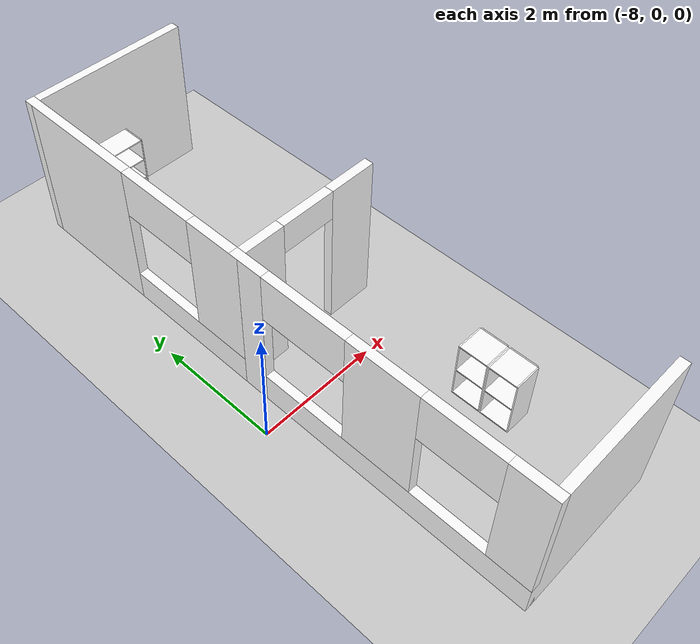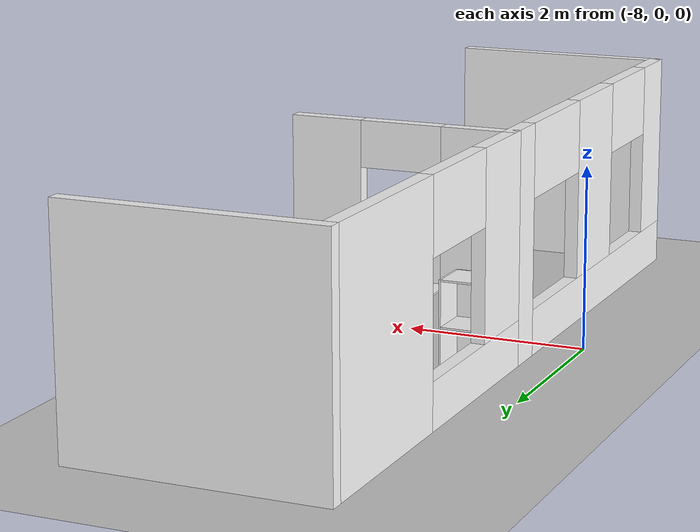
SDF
<sdf version="1.8">
 <world name="bot4House">
  <model name="ground_plane">
   <static>1</static>
   <link name="link">
    <collision name="collision">
     <geometry><plane><normal>0 0 1</normal><size>100 100</size></plane></geometry>
    </collision>
    <visual name="visual"><geometry><plane><normal>0 0 1</normal><size>100 100</size></plane></geometry></visual>
   </link>
  </model>
  <model name="house">
   <link name="Wall_84">
    <pose>-6.2 5.275 0 0 -0 3.14159</pose>
    <visual name="Wall_84_Visual">
     <pose>0 0 1.25 0 -0 0</pose>
     <geometry><box><size>2.75 0.15 2.5</size></box></geometry>
     <material>
      <ambient>1 1 1 1</ambient>
      <diffuse>1 1 1 1</diffuse>
      <specular>0.2 0.2 0.2 1</specular>
      <emissive>0 0 0 1</emissive>
     </material>
    </visual>
    <collision name="Wall_84_Collision">
     <pose>0 0 1.25 0 -0 0</pose>
     <geometry><box><size>2.75 0.15 2.5</size></box></geometry>
     <surface>
      <friction>
       <ode><mu>1</mu><mu2>1</mu2><fdir1>0 0 0</fdir1><slip1>0</slip1><slip2>0</slip2></ode>
       <torsional>
        <coefficient>1</coefficient>
        <patch_radius>0</patch_radius>
        <surface_radius>0</surface_radius>
        <use_patch_radius>1</use_patch_radius>
        <ode><slip>0</slip></ode>
       </torsional>
      </friction>
      <bounce><restitution_coefficient>0</restitution_coefficient><threshold>1e+06</threshold></bounce>
      <contact>
       <collide_without_contact>0</collide_without_contact>
       <collide_without_contact_bitmask>1</collide_without_contact_bitmask>
       <collide_bitmask>1</collide_bitmask>
       <ode>
        <soft_cfm>0</soft_cfm>
        <soft_erp>0.2</soft_erp>
        <kp>1e+13</kp>
        <kd>1</kd>
        <max_vel>0.01</max_vel>
        <min_depth>0</min_depth>
       </ode>
       <bullet>
        <split_impulse>1</split_impulse>
        <split_impulse_penetration_threshold>-0.01</split_impulse_penetration_threshold>
        <soft_cfm>0</soft_cfm>
        <soft_erp>0.2</soft_erp>
        <kp>1e+13</kp>
        <kd>1</kd>
       </bullet>
      </contact>
     </surface>
    </collision>
   </link>
   <link name="Wall_85">
    <pose>-7.5 3.1 0 0 0 -1.5708</pose>
    <visual name="Wall_85_Visual_3">
     <pose>0.62212 0 2.1 0 -0 0</pose>
     <geometry><box><size>1.332 0.15 0.8</size></box></geometry>
     <material>
      <ambient>1 1 1 1</ambient>
      <diffuse>1 1 1 1</diffuse>
      <specular>0.2 0.2 0.2 1</specular>
      <emissive>0 0 0 1</emissive>
     </material>
    </visual>
    <visual name="Wall_85_Visual_2">
     <pose>1.76906 0 1.5 0 -0 0</pose>
     <geometry><box><size>0.96188 0.15 2</size></box></geometry>
     <material>
      <ambient>1 1 1 1</ambient>
      <diffuse>1 1 1 1</diffuse>
      <specular>0.2 0.2 0.2 1</specular>
      <emissive>0 0 0 1</emissive>
     </material>
    </visual>
    <visual name="Wall_85_Visual_0">
     <pose>-1.14694 0 1.25 0 -0 0</pose>
     <geometry><box><size>2.20612 0.15 2.5</size></box></geometry>
     <material>
      <ambient>1 1 1 1</ambient>
      <diffuse>1 1 1 1</diffuse>
      <specular>0.2 0.2 0.2 1</specular>
      <emissive>0 0 0 1</emissive>
     </material>
    </visual>
    <visual name="Wall_85_Visual_1">
     <pose>1.10306 0 0.25 0 -0 0</pose>
     <geometry><box><size>2.29388 0.15 0.5</size></box></geometry>
     <material>
      <ambient>1 1 1 1</ambient>
      <diffuse>1 1 1 1</diffuse>
      <specular>0.2 0.2 0.2 1</specular>
      <emissive>0 0 0 1</emissive>
     </material>
    </visual>
    <collision name="Wall_85_Collision_3">
     <pose>0.62212 0 2.1 0 -0 0</pose>
     <geometry><box><size>1.332 0.15 0.8</size></box></geometry>
     <surface>
      <friction>
       <ode><mu>1</mu><mu2>1</mu2><fdir1>0 0 0</fdir1><slip1>0</slip1><slip2>0</slip2></ode>
       <torsional>
        <coefficient>1</coefficient>
        <patch_radius>0</patch_radius>
        <surface_radius>0</surface_radius>
        <use_patch_radius>1</use_patch_radius>
        <ode><slip>0</slip></ode>
       </torsional>
      </friction>
      <bounce><restitution_coefficient>0</restitution_coefficient><threshold>1e+06</threshold></bounce>
      <contact>
       <collide_without_contact>0</collide_without_contact>
       <collide_without_contact_bitmask>1</collide_without_contact_bitmask>
       <collide_bitmask>1</collide_bitmask>
       <ode>
        <soft_cfm>0</soft_cfm>
        <soft_erp>0.2</soft_erp>
        <kp>1e+13</kp>
        <kd>1</kd>
        <max_vel>0.01</max_vel>
        <min_depth>0</min_depth>
       </ode>
       <bullet>
        <split_impulse>1</split_impulse>
        <split_impulse_penetration_threshold>-0.01</split_impulse_penetration_threshold>
        <soft_cfm>0</soft_cfm>
        <soft_erp>0.2</soft_erp>
        <kp>1e+13</kp>
        <kd>1</kd>
       </bullet>
      </contact>
     </surface>
    </collision>
    <collision name="Wall_85_Collision_2">
     <pose>1.76906 0 1.5 0 -0 0</pose>
     <geometry><box><size>0.96188 0.15 2</size></box></geometry>
     <surface>
      <friction>
       <ode><mu>1</mu><mu2>1</mu2><fdir1>0 0 0</fdir1><slip1>0</slip1><slip2>0</slip2></ode>
       <torsional>
        <coefficient>1</coefficient>
        <patch_radius>0</patch_radius>
        <surface_radius>0</surface_radius>
        <use_patch_radius>1</use_patch_radius>
        <ode><slip>0</slip></ode>
       </torsional>
      </friction>
      <bounce><restitution_coefficient>0</restitution_coefficient><threshold>1e+06</threshold></bounce>
      <contact>
       <collide_without_contact>0</collide_without_contact>
       <collide_without_contact_bitmask>1</collide_without_contact_bitmask>
       <collide_bitmask>1</collide_bitmask>
       <ode>
        <soft_cfm>0</soft_cfm>
        <soft_erp>0.2</soft_erp>
        <kp>1e+13</kp>
        <kd>1</kd>
        <max_vel>0.01</max_vel>
        <min_depth>0</min_depth>
       </ode>
       <bullet>
        <split_impulse>1</split_impulse>
        <split_impulse_penetration_threshold>-0.01</split_impulse_penetration_threshold>
        <soft_cfm>0</soft_cfm>
        <soft_erp>0.2</soft_erp>
        <kp>1e+13</kp>
        <kd>1</kd>
       </bullet>
      </contact>
     </surface>
    </collision>
    <collision name="Wall_85_Collision_1">
     <pose>1.10306 0 0.25 0 -0 0</pose>
     <geometry><box><size>2.29388 0.15 0.5</size></box></geometry>
     <surface>
      <friction>
       <ode><mu>1</mu><mu2>1</mu2><fdir1>0 0 0</fdir1><slip1>0</slip1><slip2>0</slip2></ode>
       <torsional>
        <coefficient>1</coefficient>
        <patch_radius>0</patch_radius>
        <surface_radius>0</surface_radius>
        <use_patch_radius>1</use_patch_radius>
        <ode><slip>0</slip></ode>
       </torsional>
      </friction>
      <bounce><restitution_coefficient>0</restitution_coefficient><threshold>1e+06</threshold></bounce>
      <contact>
       <collide_without_contact>0</collide_without_contact>
       <collide_without_contact_bitmask>1</collide_without_contact_bitmask>
       <collide_bitmask>1</collide_bitmask>
       <ode>
        <soft_cfm>0</soft_cfm>
        <soft_erp>0.2</soft_erp>
        <kp>1e+13</kp>
        <kd>1</kd>
        <max_vel>0.01</max_vel>
        <min_depth>0</min_depth>
       </ode>
       <bullet>
        <split_impulse>1</split_impulse>
        <split_impulse_penetration_threshold>-0.01</split_impulse_penetration_threshold>
        <soft_cfm>0</soft_cfm>
        <soft_erp>0.2</soft_erp>
        <kp>1e+13</kp>
        <kd>1</kd>
       </bullet>
      </contact>
     </surface>
    </collision>
    <collision name="Wall_85_Collision_0">
     <pose>-1.14694 0 1.25 0 -0 0</pose>
     <geometry><box><size>2.20612 0.15 2.5</size></box></geometry>
     <surface>
      <friction>
       <ode><mu>1</mu><mu2>1</mu2><fdir1>0 0 0</fdir1><slip1>0</slip1><slip2>0</slip2></ode>
       <torsional>
        <coefficient>1</coefficient>
        <patch_radius>0</patch_radius>
        <surface_radius>0</surface_radius>
        <use_patch_radius>1</use_patch_radius>
        <ode><slip>0</slip></ode>
       </torsional>
      </friction>
      <bounce><restitution_coefficient>0</restitution_coefficient><threshold>1e+06</threshold></bounce>
      <contact>
       <collide_without_contact>0</collide_without_contact>
       <collide_without_contact_bitmask>1</collide_without_contact_bitmask>
       <collide_bitmask>1</collide_bitmask>
       <ode>
        <soft_cfm>0</soft_cfm>
        <soft_erp>0.2</soft_erp>
        <kp>1e+13</kp>
        <kd>1</kd>
        <max_vel>0.01</max_vel>
        <min_depth>0</min_depth>
       </ode>
       <bullet>
        <split_impulse>1</split_impulse>
        <split_impulse_penetration_threshold>-0.01</split_impulse_penetration_threshold>
        <soft_cfm>0</soft_cfm>
        <soft_erp>0.2</soft_erp>
        <kp>1e+13</kp>
        <kd>1</kd>
       </bullet>
      </contact>
     </surface>
    </collision>
   </link>
   <link name="Wall_86">
    <pose>-7.5 -1.5 0 0 0 -1.5708</pose>
    <visual name="Wall_86_Visual_1">
     <pose>0.28462 0 0.25 0 -0 0</pose>
     <geometry><box><size>4.43076 0.15 0.5</size></box></geometry>
     <material>
      <ambient>1 1 1 1</ambient>
      <diffuse>1 1 1 1</diffuse>
      <specular>0.2 0.2 0.2 1</specular>
      <emissive>0 0 0 1</emissive>
     </material>
    </visual>
    <visual name="Wall_86_Visual_4">
     <pose>-1.22476 0 2.1 0 -0 0</pose>
     <geometry><box><size>1.412 0.15 0.8</size></box></geometry>
     <material>
      <ambient>1 1 1 1</ambient>
      <diffuse>1 1 1 1</diffuse>
      <specular>0.2 0.2 0.2 1</specular>
      <emissive>0 0 0 1</emissive>
     </material>
    </visual>
    <visual name="Wall_86_Visual_0">
     <pose>-2.21538 0 1.25 0 -0 0</pose>
     <geometry><box><size>0.569241 0.15 2.5</size></box></geometry>
     <material>
      <ambient>1 1 1 1</ambient>
      <diffuse>1 1 1 1</diffuse>
      <specular>0.2 0.2 0.2 1</specular>
      <emissive>0 0 0 1</emissive>
     </material>
    </visual>
    <visual name="Wall_86_Visual_5">
     <pose>1.22246 0 2.1 0 -0 0</pose>
     <geometry><box><size>1.199 0.15 0.8</size></box></geometry>
     <material>
      <ambient>1 1 1 1</ambient>
      <diffuse>1 1 1 1</diffuse>
      <specular>0.2 0.2 0.2 1</specular>
      <emissive>0 0 0 1</emissive>
     </material>
    </visual>
    <visual name="Wall_86_Visual_2">
     <pose>0.0521 0 1.5 0 -0 0</pose>
     <geometry><box><size>1.14172 0.15 2</size></box></geometry>
     <material>
      <ambient>1 1 1 1</ambient>
      <diffuse>1 1 1 1</diffuse>
      <specular>0.2 0.2 0.2 1</specular>
      <emissive>0 0 0 1</emissive>
     </material>
    </visual>
    <visual name="Wall_86_Visual_3">
     <pose>2.16098 0 1.5 0 -0 0</pose>
     <geometry><box><size>0.678041 0.15 2</size></box></geometry>
     <material>
      <ambient>1 1 1 1</ambient>
      <diffuse>1 1 1 1</diffuse>
      <specular>0.2 0.2 0.2 1</specular>
      <emissive>0 0 0 1</emissive>
     </material>
    </visual>
    <collision name="Wall_86_Collision_4">
     <pose>-1.22476 0 2.1 0 -0 0</pose>
     <geometry><box><size>1.412 0.15 0.8</size></box></geometry>
     <surface>
      <friction>
       <ode><mu>1</mu><mu2>1</mu2><fdir1>0 0 0</fdir1><slip1>0</slip1><slip2>0</slip2></ode>
       <torsional>
        <coefficient>1</coefficient>
        <patch_radius>0</patch_radius>
        <surface_radius>0</surface_radius>
        <use_patch_radius>1</use_patch_radius>
        <ode><slip>0</slip></ode>
       </torsional>
      </friction>
      <bounce><restitution_coefficient>0</restitution_coefficient><threshold>1e+06</threshold></bounce>
      <contact>
       <collide_without_contact>0</collide_without_contact>
       <collide_without_contact_bitmask>1</collide_without_contact_bitmask>
       <collide_bitmask>1</collide_bitmask>
       <ode>
        <soft_cfm>0</soft_cfm>
        <soft_erp>0.2</soft_erp>
        <kp>1e+13</kp>
        <kd>1</kd>
        <max_vel>0.01</max_vel>
        <min_depth>0</min_depth>
       </ode>
       <bullet>
        <split_impulse>1</split_impulse>
        <split_impulse_penetration_threshold>-0.01</split_impulse_penetration_threshold>
        <soft_cfm>0</soft_cfm>
        <soft_erp>0.2</soft_erp>
        <kp>1e+13</kp>
        <kd>1</kd>
       </bullet>
      </contact>
     </surface>
    </collision>
    <collision name="Wall_86_Collision_5">
     <pose>1.22246 0 2.1 0 -0 0</pose>
     <geometry><box><size>1.199 0.15 0.8</size></box></geometry>
     <surface>
      <friction>
       <ode><mu>1</mu><mu2>1</mu2><fdir1>0 0 0</fdir1><slip1>0</slip1><slip2>0</slip2></ode>
       <torsional>
        <coefficient>1</coefficient>
        <patch_radius>0</patch_radius>
        <surface_radius>0</surface_radius>
        <use_patch_radius>1</use_patch_radius>
        <ode><slip>0</slip></ode>
       </torsional>
      </friction>
      <bounce><restitution_coefficient>0</restitution_coefficient><threshold>1e+06</threshold></bounce>
      <contact>
       <collide_without_contact>0</collide_without_contact>
       <collide_without_contact_bitmask>1</collide_without_contact_bitmask>
       <collide_bitmask>1</collide_bitmask>
       <ode>
        <soft_cfm>0</soft_cfm>
        <soft_erp>0.2</soft_erp>
        <kp>1e+13</kp>
        <kd>1</kd>
        <max_vel>0.01</max_vel>
        <min_depth>0</min_depth>
       </ode>
       <bullet>
        <split_impulse>1</split_impulse>
        <split_impulse_penetration_threshold>-0.01</split_impulse_penetration_threshold>
        <soft_cfm>0</soft_cfm>
        <soft_erp>0.2</soft_erp>
        <kp>1e+13</kp>
        <kd>1</kd>
       </bullet>
      </contact>
     </surface>
    </collision>
    <collision name="Wall_86_Collision_2">
     <pose>0.0521 0 1.5 0 -0 0</pose>
     <geometry><box><size>1.14172 0.15 2</size></box></geometry>
     <surface>
      <friction>
       <ode><mu>1</mu><mu2>1</mu2><fdir1>0 0 0</fdir1><slip1>0</slip1><slip2>0</slip2></ode>
       <torsional>
        <coefficient>1</coefficient>
        <patch_radius>0</patch_radius>
        <surface_radius>0</surface_radius>
        <use_patch_radius>1</use_patch_radius>
        <ode><slip>0</slip></ode>
       </torsional>
      </friction>
      <bounce><restitution_coefficient>0</restitution_coefficient><threshold>1e+06</threshold></bounce>
      <contact>
       <collide_without_contact>0</collide_without_contact>
       <collide_without_contact_bitmask>1</collide_without_contact_bitmask>
       <collide_bitmask>1</collide_bitmask>
       <ode>
        <soft_cfm>0</soft_cfm>
        <soft_erp>0.2</soft_erp>
        <kp>1e+13</kp>
        <kd>1</kd>
        <max_vel>0.01</max_vel>
        <min_depth>0</min_depth>
       </ode>
       <bullet>
        <split_impulse>1</split_impulse>
        <split_impulse_penetration_threshold>-0.01</split_impulse_penetration_threshold>
        <soft_cfm>0</soft_cfm>
        <soft_erp>0.2</soft_erp>
        <kp>1e+13</kp>
        <kd>1</kd>
       </bullet>
      </contact>
     </surface>
    </collision>
    <collision name="Wall_86_Collision_1">
     <pose>0.28462 0 0.25 0 -0 0</pose>
     <geometry><box><size>4.43076 0.15 0.5</size></box></geometry>
     <surface>
      <friction>
       <ode><mu>1</mu><mu2>1</mu2><fdir1>0 0 0</fdir1><slip1>0</slip1><slip2>0</slip2></ode>
       <torsional>
        <coefficient>1</coefficient>
        <patch_radius>0</patch_radius>
        <surface_radius>0</surface_radius>
        <use_patch_radius>1</use_patch_radius>
        <ode><slip>0</slip></ode>
       </torsional>
      </friction>
      <bounce><restitution_coefficient>0</restitution_coefficient><threshold>1e+06</threshold></bounce>
      <contact>
       <collide_without_contact>0</collide_without_contact>
       <collide_without_contact_bitmask>1</collide_without_contact_bitmask>
       <collide_bitmask>1</collide_bitmask>
       <ode>
        <soft_cfm>0</soft_cfm>
        <soft_erp>0.2</soft_erp>
        <kp>1e+13</kp>
        <kd>1</kd>
        <max_vel>0.01</max_vel>
        <min_depth>0</min_depth>
       </ode>
       <bullet>
        <split_impulse>1</split_impulse>
        <split_impulse_penetration_threshold>-0.01</split_impulse_penetration_threshold>
        <soft_cfm>0</soft_cfm>
        <soft_erp>0.2</soft_erp>
        <kp>1e+13</kp>
        <kd>1</kd>
       </bullet>
      </contact>
     </surface>
    </collision>
    <collision name="Wall_86_Collision_3">
     <pose>2.16098 0 1.5 0 -0 0</pose>
     <geometry><box><size>0.678041 0.15 2</size></box></geometry>
     <surface>
      <friction>
       <ode><mu>1</mu><mu2>1</mu2><fdir1>0 0 0</fdir1><slip1>0</slip1><slip2>0</slip2></ode>
       <torsional>
        <coefficient>1</coefficient>
        <patch_radius>0</patch_radius>
        <surface_radius>0</surface_radius>
        <use_patch_radius>1</use_patch_radius>
        <ode><slip>0</slip></ode>
       </torsional>
      </friction>
      <bounce><restitution_coefficient>0</restitution_coefficient><threshold>1e+06</threshold></bounce>
      <contact>
       <collide_without_contact>0</collide_without_contact>
       <collide_without_contact_bitmask>1</collide_without_contact_bitmask>
       <collide_bitmask>1</collide_bitmask>
       <ode>
        <soft_cfm>0</soft_cfm>
        <soft_erp>0.2</soft_erp>
        <kp>1e+13</kp>
        <kd>1</kd>
        <max_vel>0.01</max_vel>
        <min_depth>0</min_depth>
       </ode>
       <bullet>
        <split_impulse>1</split_impulse>
        <split_impulse_penetration_threshold>-0.01</split_impulse_penetration_threshold>
        <soft_cfm>0</soft_cfm>
        <soft_erp>0.2</soft_erp>
        <kp>1e+13</kp>
        <kd>1</kd>
       </bullet>
      </contact>
     </surface>
    </collision>
    <collision name="Wall_86_Collision_0">
     <pose>-2.21538 0 1.25 0 -0 0</pose>
     <geometry><box><size>0.569241 0.15 2.5</size></box></geometry>
     <surface>
      <friction>
       <ode><mu>1</mu><mu2>1</mu2><fdir1>0 0 0</fdir1><slip1>0</slip1><slip2>0</slip2></ode>
       <torsional>
        <coefficient>1</coefficient>
        <patch_radius>0</patch_radius>
        <surface_radius>0</surface_radius>
        <use_patch_radius>1</use_patch_radius>
        <ode><slip>0</slip></ode>
       </torsional>
      </friction>
      <bounce><restitution_coefficient>0</restitution_coefficient><threshold>1e+06</threshold></bounce>
      <contact>
       <collide_without_contact>0</collide_without_contact>
       <collide_without_contact_bitmask>1</collide_without_contact_bitmask>
       <collide_bitmask>1</collide_bitmask>
       <ode>
        <soft_cfm>0</soft_cfm>
        <soft_erp>0.2</soft_erp>
        <kp>1e+13</kp>
        <kd>1</kd>
        <max_vel>0.01</max_vel>
        <min_depth>0</min_depth>
       </ode>
       <bullet>
        <split_impulse>1</split_impulse>
        <split_impulse_penetration_threshold>-0.01</split_impulse_penetration_threshold>
        <soft_cfm>0</soft_cfm>
        <soft_erp>0.2</soft_erp>
        <kp>1e+13</kp>
        <kd>1</kd>
       </bullet>
      </contact>
     </surface>
    </collision>
   </link>
   <link name="Wall_87">
    <pose>-6.325 -3.925 0 0 -0 0</pose>
    <visual name="Wall_87_Visual">
     <pose>0 0 1.25 0 -0 0</pose>
     <geometry><box><size>2.5 0.15 2.5</size></box></geometry>
     <material>
      <ambient>1 1 1 1</ambient>
      <diffuse>1 1 1 1</diffuse>
      <specular>0.2 0.2 0.2 1</specular>
      <emissive>0 0 0 1</emissive>
     </material>
    </visual>
    <collision name="Wall_87_Collision">
     <pose>0 0 1.25 0 -0 0</pose>
     <geometry><box><size>2.5 0.15 2.5</size></box></geometry>
     <surface>
      <friction>
       <ode><mu>1</mu><mu2>1</mu2><fdir1>0 0 0</fdir1><slip1>0</slip1><slip2>0</slip2></ode>
       <torsional>
        <coefficient>1</coefficient>
        <patch_radius>0</patch_radius>
        <surface_radius>0</surface_radius>
        <use_patch_radius>1</use_patch_radius>
        <ode><slip>0</slip></ode>
       </torsional>
      </friction>
      <bounce><restitution_coefficient>0</restitution_coefficient><threshold>1e+06</threshold></bounce>
      <contact>
       <collide_without_contact>0</collide_without_contact>
       <collide_without_contact_bitmask>1</collide_without_contact_bitmask>
       <collide_bitmask>1</collide_bitmask>
       <ode>
        <soft_cfm>0</soft_cfm>
        <soft_erp>0.2</soft_erp>
        <kp>1e+13</kp>
        <kd>1</kd>
        <max_vel>0.01</max_vel>
        <min_depth>0</min_depth>
       </ode>
       <bullet>
        <split_impulse>1</split_impulse>
        <split_impulse_penetration_threshold>-0.01</split_impulse_penetration_threshold>
        <soft_cfm>0</soft_cfm>
        <soft_erp>0.2</soft_erp>
        <kp>1e+13</kp>
        <kd>1</kd>
       </bullet>
      </contact>
     </surface>
    </collision>
   </link>
   <link name="Wall_98">
    <pose>-6.325 0.925 0 0 -0 0</pose>
    <visual name="Wall_98_Visual_2">
     <pose>0.015777 0 2.25 0 -0 0</pose>
     <geometry><box><size>0.9 0.15 0.5</size></box></geometry>
     <material>
      <ambient>1 1 1 1</ambient>
      <diffuse>1 1 1 1</diffuse>
      <specular>0.2 0.2 0.2 1</specular>
      <emissive>0 0 0 1</emissive>
     </material>
    </visual>
    <visual name="Wall_98_Visual_1">
     <pose>0.857889 0 1.25 0 -0 0</pose>
     <geometry><box><size>0.784223 0.15 2.5</size></box></geometry>
     <material>
      <ambient>1 1 1 1</ambient>
      <diffuse>1 1 1 1</diffuse>
      <specular>0.2 0.2 0.2 1</specular>
      <emissive>0 0 0 1</emissive>
     </material>
    </visual>
    <visual name="Wall_98_Visual_0">
     <pose>-0.842111 0 1.25 0 -0 0</pose>
     <geometry><box><size>0.815777 0.15 2.5</size></box></geometry>
     <material>
      <ambient>1 1 1 1</ambient>
      <diffuse>1 1 1 1</diffuse>
      <specular>0.2 0.2 0.2 1</specular>
      <emissive>0 0 0 1</emissive>
     </material>
    </visual>
    <collision name="Wall_98_Collision_0">
     <pose>-0.842111 0 1.25 0 -0 0</pose>
     <geometry><box><size>0.815777 0.15 2.5</size></box></geometry>
     <surface>
      <friction>
       <ode><mu>1</mu><mu2>1</mu2><fdir1>0 0 0</fdir1><slip1>0</slip1><slip2>0</slip2></ode>
       <torsional>
        <coefficient>1</coefficient>
        <patch_radius>0</patch_radius>
        <surface_radius>0</surface_radius>
        <use_patch_radius>1</use_patch_radius>
        <ode><slip>0</slip></ode>
       </torsional>
      </friction>
      <bounce><restitution_coefficient>0</restitution_coefficient><threshold>1e+06</threshold></bounce>
      <contact>
       <collide_without_contact>0</collide_without_contact>
       <collide_without_contact_bitmask>1</collide_without_contact_bitmask>
       <collide_bitmask>1</collide_bitmask>
       <ode>
        <soft_cfm>0</soft_cfm>
        <soft_erp>0.2</soft_erp>
        <kp>1e+13</kp>
        <kd>1</kd>
        <max_vel>0.01</max_vel>
        <min_depth>0</min_depth>
       </ode>
       <bullet>
        <split_impulse>1</split_impulse>
        <split_impulse_penetration_threshold>-0.01</split_impulse_penetration_threshold>
        <soft_cfm>0</soft_cfm>
        <soft_erp>0.2</soft_erp>
        <kp>1e+13</kp>
        <kd>1</kd>
       </bullet>
      </contact>
     </surface>
    </collision>
    <collision name="Wall_98_Collision_1">
     <pose>0.857889 0 1.25 0 -0 0</pose>
     <geometry><box><size>0.784223 0.15 2.5</size></box></geometry>
     <surface>
      <friction>
       <ode><mu>1</mu><mu2>1</mu2><fdir1>0 0 0</fdir1><slip1>0</slip1><slip2>0</slip2></ode>
       <torsional>
        <coefficient>1</coefficient>
        <patch_radius>0</patch_radius>
        <surface_radius>0</surface_radius>
        <use_patch_radius>1</use_patch_radius>
        <ode><slip>0</slip></ode>
       </torsional>
      </friction>
      <bounce><restitution_coefficient>0</restitution_coefficient><threshold>1e+06</threshold></bounce>
      <contact>
       <collide_without_contact>0</collide_without_contact>
       <collide_without_contact_bitmask>1</collide_without_contact_bitmask>
       <collide_bitmask>1</collide_bitmask>
       <ode>
        <soft_cfm>0</soft_cfm>
        <soft_erp>0.2</soft_erp>
        <kp>1e+13</kp>
        <kd>1</kd>
        <max_vel>0.01</max_vel>
        <min_depth>0</min_depth>
       </ode>
       <bullet>
        <split_impulse>1</split_impulse>
        <split_impulse_penetration_threshold>-0.01</split_impulse_penetration_threshold>
        <soft_cfm>0</soft_cfm>
        <soft_erp>0.2</soft_erp>
        <kp>1e+13</kp>
        <kd>1</kd>
       </bullet>
      </contact>
     </surface>
    </collision>
    <collision name="Wall_98_Collision_2">
     <pose>0.015777 0 2.25 0 -0 0</pose>
     <geometry><box><size>0.9 0.15 0.5</size></box></geometry>
     <surface>
      <friction>
       <ode><mu>1</mu><mu2>1</mu2><fdir1>0 0 0</fdir1><slip1>0</slip1><slip2>0</slip2></ode>
       <torsional>
        <coefficient>1</coefficient>
        <patch_radius>0</patch_radius>
        <surface_radius>0</surface_radius>
        <use_patch_radius>1</use_patch_radius>
        <ode><slip>0</slip></ode>
       </torsional>
      </friction>
      <bounce><restitution_coefficient>0</restitution_coefficient><threshold>1e+06</threshold></bounce>
      <contact>
       <collide_without_contact>0</collide_without_contact>
       <collide_without_contact_bitmask>1</collide_without_contact_bitmask>
       <collide_bitmask>1</collide_bitmask>
       <ode>
        <soft_cfm>0</soft_cfm>
        <soft_erp>0.2</soft_erp>
        <kp>1e+13</kp>
        <kd>1</kd>
        <max_vel>0.01</max_vel>
        <min_depth>0</min_depth>
       </ode>
       <bullet>
        <split_impulse>1</split_impulse>
        <split_impulse_penetration_threshold>-0.01</split_impulse_penetration_threshold>
        <soft_cfm>0</soft_cfm>
        <soft_erp>0.2</soft_erp>
        <kp>1e+13</kp>
        <kd>1</kd>
       </bullet>
      </contact>
     </surface>
    </collision>
   </link>
   <model name="bookshelf">
    <static>1</static>
    <link name="link">
     <inertial><mass>1</mass></inertial>
     <collision name="back">
      <pose>0 0.005 0.6 0 -0 0</pose>
      <geometry><box><size>0.9 0.01 1.2</size></box></geometry>
     </collision>
     <visual name="visual1">
      <pose>0 0.005 0.6 0 -0 0</pose>
      <geometry><box><size>0.9 0.01 1.2</size></box></geometry>
      <material>
       <ambient>1 1 1 1</ambient>
       <diffuse>1 1 1 1</diffuse>
       <specular>0.2 0.2 0.2 1</specular>
       <emissive>0 0 0 1</emissive>
      </material>
     </visual>
     <collision name="left_side">
      <pose>0.45 -0.195 0.6 0 -0 0</pose>
      <geometry><box><size>0.02 0.4 1.2</size></box></geometry>
     </collision>
     <visual name="visual2">
      <pose>0.45 -0.195 0.6 0 -0 0</pose>
      <geometry><box><size>0.02 0.4 1.2</size></box></geometry>
      <material>
       <ambient>1 1 1 1</ambient>
       <diffuse>1 1 1 1</diffuse>
       <specular>0.2 0.2 0.2 1</specular>
       <emissive>0 0 0 1</emissive>
      </material>
     </visual>
     <collision name="right_side">
      <pose>-0.45 -0.195 0.6 0 -0 0</pose>
      <geometry><box><size>0.02 0.4 1.2</size></box></geometry>
     </collision>
     <visual name="visual3">
      <pose>-0.45 -0.195 0.6 0 -0 0</pose>
      <geometry><box><size>0.02 0.4 1.2</size></box></geometry>
      <material>
       <ambient>1 1 1 1</ambient>
       <diffuse>1 1 1 1</diffuse>
       <specular>0.2 0.2 0.2 1</specular>
       <emissive>0 0 0 1</emissive>
      </material>
     </visual>
     <collision name="bottom">
      <pose>0 -0.195 0.03 0 -0 0</pose>
      <geometry><box><size>0.88 0.4 0.06</size></box></geometry>
     </collision>
     <visual name="visual4">
      <pose>0 -0.195 0.03 0 -0 0</pose>
      <geometry><box><size>0.88 0.4 0.06</size></box></geometry>
      <material>
       <ambient>1 1 1 1</ambient>
       <diffuse>1 1 1 1</diffuse>
       <specular>0.2 0.2 0.2 1</specular>
       <emissive>0 0 0 1</emissive>
      </material>
     </visual>
     <collision name="top">
      <pose>0 -0.195 1.19 0 -0 0</pose>
      <geometry><box><size>0.88 0.4 0.02</size></box></geometry>
     </collision>
     <visual name="visual5">
      <pose>0 -0.195 1.19 0 -0 0</pose>
      <geometry><box><size>0.88 0.4 0.02</size></box></geometry>
      <material>
       <ambient>1 1 1 1</ambient>
       <diffuse>1 1 1 1</diffuse>
       <specular>0.2 0.2 0.2 1</specular>
       <emissive>0 0 0 1</emissive>
      </material>
     </visual>
     <collision name="low_shelf">
      <pose>0 -0.195 0.43 0 -0 0</pose>
      <geometry><box><size>0.88 0.4 0.02</size></box></geometry>
     </collision>
     <visual name="visual6">
      <pose>0 -0.195 0.43 0 -0 0</pose>
      <geometry><box><size>0.88 0.4 0.02</size></box></geometry>
      <material>
       <ambient>1 1 1 1</ambient>
       <diffuse>1 1 1 1</diffuse>
       <specular>0.2 0.2 0.2 1</specular>
       <emissive>0 0 0 1</emissive>
      </material>
     </visual>
     <collision name="high_shelf">
      <pose>0 -0.195 0.8 0 -0 0</pose>
      <geometry><box><size>0.88 0.4 0.02</size></box></geometry>
     </collision>
     <visual name="visual7">
      <pose>0 -0.195 0.8 0 -0 0</pose>
      <geometry><box><size>0.88 0.4 0.02</size></box></geometry>
      <material>
       <ambient>1 1 1 1</ambient>
       <diffuse>1 1 1 1</diffuse>
       <specular>0.2 0.2 0.2 1</specular>
       <emissive>0 0 0 1</emissive>
      </material>
     </visual>
    </link>
    <pose>-6.54397 5.19486 -0 0 -0 0</pose>
   </model>
   <model name="cabinet">
    <static>1</static>
    <link name="cabinet_bottom_plate">
     <inertial>
      <pose>0 0 -1 0 -0 0</pose>
      <inertia><ixx>2.05</ixx><ixy>0</ixy><ixz>0</ixz><iyy>2.05</iyy><iyz>0</iyz><izz>2.05</izz></inertia>
      <mass>25</mass>
     </inertial>
     <collision name="cabinet_bottom_plate_geom">
      <pose>0 0 0.01 0 -0 0</pose>
      <geometry><box><size>0.45 0.45 0.02</size></box></geometry>
     </collision>
     <visual name="cabinet_bottom_plate_geom_visual">
      <pose>0 0 0.01 0 -0 0</pose>
      <geometry><box><size>0.45 0.45 0.02</size></box></geometry>
      <material>
       <ambient>1 1 1 1</ambient>
       <diffuse>1 1 1 1</diffuse>
       <specular>0.2 0.2 0.2 1</specular>
       <emissive>0 0 0 1</emissive>
      </material>
     </visual>
     <collision name="cabinet_bottom_plate_geom_cabinet_back_plate">
      <pose>0.235 0 0.51 0 -0 0</pose>
      <geometry><box><size>0.02 0.45 1.02</size></box></geometry>
     </collision>
     <visual name="cabinet_bottom_plate_geom_cabinet_back_plate_visual">
      <pose>0.235 0 0.51 0 -0 0</pose>
      <geometry><box><size>0.02 0.45 1.02</size></box></geometry>
      <material>
       <ambient>1 1 1 1</ambient>
       <diffuse>1 1 1 1</diffuse>
       <specular>0.2 0.2 0.2 1</specular>
       <emissive>0 0 0 1</emissive>
      </material>
     </visual>
     <collision name="cabinet_bottom_plate_geom_cabinet_left_plate">
      <pose>0 0.235 0.51 0 -0 0</pose>
      <geometry><box><size>0.45 0.02 1.02</size></box></geometry>
     </collision>
     <visual name="cabinet_bottom_plate_geom_cabinet_left_plate_visual">
      <pose>0 0.235 0.51 0 -0 0</pose>
      <geometry><box><size>0.45 0.02 1.02</size></box></geometry>
      <material>
       <ambient>1 1 1 1</ambient>
       <diffuse>1 1 1 1</diffuse>
       <specular>0.2 0.2 0.2 1</specular>
       <emissive>0 0 0 1</emissive>
      </material>
     </visual>
     <collision name="cabinet_bottom_plate_geom_cabinet_middle_plate">
      <pose>0 0 0.51 0 -0 0</pose>
      <geometry><box><size>0.45 0.45 0.02</size></box></geometry>
     </collision>
     <visual name="cabinet_bottom_plate_geom_cabinet_middle_plate_visual">
      <pose>0 0 0.51 0 -0 0</pose>
      <geometry><box><size>0.45 0.45 0.02</size></box></geometry>
      <material>
       <ambient>1 1 1 1</ambient>
       <diffuse>1 1 1 1</diffuse>
       <specular>0.2 0.2 0.2 1</specular>
       <emissive>0 0 0 1</emissive>
      </material>
     </visual>
     <collision name="cabinet_bottom_plate_geom_cabinet_right_plate">
      <pose>0 -0.235 0.51 0 -0 0</pose>
      <geometry><box><size>0.45 0.02 1.02</size></box></geometry>
     </collision>
     <visual name="cabinet_bottom_plate_geom_cabinet_right_plate_visual">
      <pose>0 -0.235 0.51 0 -0 0</pose>
      <geometry><box><size>0.45 0.02 1.02</size></box></geometry>
      <material>
       <ambient>1 1 1 1</ambient>
       <diffuse>1 1 1 1</diffuse>
       <specular>0.2 0.2 0.2 1</specular>
       <emissive>0 0 0 1</emissive>
      </material>
     </visual>
     <collision name="cabinet_bottom_plate_geom_cabinet_top_plate">
      <pose>0 0 1.01 0 -0 0</pose>
      <geometry><box><size>0.45 0.45 0.02</size></box></geometry>
     </collision>
     <visual name="cabinet_bottom_plate_geom_cabinet_top_plate_visual">
      <pose>0 0 1.01 0 -0 0</pose>
      <geometry><box><size>0.45 0.45 0.02</size></box></geometry>
      <material>
       <ambient>1 1 1 1</ambient>
       <diffuse>1 1 1 1</diffuse>
       <specular>0.2 0.2 0.2 1</specular>
       <emissive>0 0 0 1</emissive>
      </material>
     </visual>
    </link>
    <pose>-5.472 -1.57624 0 0 -0 0</pose>
   </model>
   <model name="cabinet_0">
    <static>1</static>
    <link name="cabinet_bottom_plate">
     <inertial>
      <pose>0 0 -1 0 -0 0</pose>
      <inertia><ixx>2.05</ixx><ixy>0</ixy><ixz>0</ixz><iyy>2.05</iyy><iyz>0</iyz><izz>2.05</izz></inertia>
      <mass>25</mass>
     </inertial>
     <collision name="cabinet_bottom_plate_geom">
      <pose>0 0 0.01 0 -0 0</pose>
      <geometry><box><size>0.45 0.45 0.02</size></box></geometry>
     </collision>
     <visual name="cabinet_bottom_plate_geom_visual">
      <pose>0 0 0.01 0 -0 0</pose>
      <geometry><box><size>0.45 0.45 0.02</size></box></geometry>
      <material>
       <ambient>1 1 1 1</ambient>
       <diffuse>1 1 1 1</diffuse>
       <specular>0.2 0.2 0.2 1</specular>
       <emissive>0 0 0 1</emissive>
      </material>
     </visual>
     <collision name="cabinet_bottom_plate_geom_cabinet_back_plate">
      <pose>0.235 0 0.51 0 -0 0</pose>
      <geometry><box><size>0.02 0.45 1.02</size></box></geometry>
     </collision>
     <visual name="cabinet_bottom_plate_geom_cabinet_back_plate_visual">
      <pose>0.235 0 0.51 0 -0 0</pose>
      <geometry><box><size>0.02 0.45 1.02</size></box></geometry>
      <material>
       <ambient>1 1 1 1</ambient>
       <diffuse>1 1 1 1</diffuse>
       <specular>0.2 0.2 0.2 1</specular>
       <emissive>0 0 0 1</emissive>
      </material>
     </visual>
     <collision name="cabinet_bottom_plate_geom_cabinet_left_plate">
      <pose>0 0.235 0.51 0 -0 0</pose>
      <geometry><box><size>0.45 0.02 1.02</size></box></geometry>
     </collision>
     <visual name="cabinet_bottom_plate_geom_cabinet_left_plate_visual">
      <pose>0 0.235 0.51 0 -0 0</pose>
      <geometry><box><size>0.45 0.02 1.02</size></box></geometry>
      <material>
       <ambient>1 1 1 1</ambient>
       <diffuse>1 1 1 1</diffuse>
       <specular>0.2 0.2 0.2 1</specular>
       <emissive>0 0 0 1</emissive>
      </material>
     </visual>
     <collision name="cabinet_bottom_plate_geom_cabinet_middle_plate">
      <pose>0 0 0.51 0 -0 0</pose>
      <geometry><box><size>0.45 0.45 0.02</size></box></geometry>
     </collision>
     <visual name="cabinet_bottom_plate_geom_cabinet_middle_plate_visual">
      <pose>0 0 0.51 0 -0 0</pose>
      <geometry><box><size>0.45 0.45 0.02</size></box></geometry>
      <material>
       <ambient>1 1 1 1</ambient>
       <diffuse>1 1 1 1</diffuse>
       <specular>0.2 0.2 0.2 1</specular>
       <emissive>0 0 0 1</emissive>
      </material>
     </visual>
     <collision name="cabinet_bottom_plate_geom_cabinet_right_plate">
      <pose>0 -0.235 0.51 0 -0 0</pose>
      <geometry><box><size>0.45 0.02 1.02</size></box></geometry>
     </collision>
     <visual name="cabinet_bottom_plate_geom_cabinet_right_plate_visual">
      <pose>0 -0.235 0.51 0 -0 0</pose>
      <geometry><box><size>0.45 0.02 1.02</size></box></geometry>
      <material>
       <ambient>1 1 1 1</ambient>
       <diffuse>1 1 1 1</diffuse>
       <specular>0.2 0.2 0.2 1</specular>
       <emissive>0 0 0 1</emissive>
      </material>
     </visual>
     <collision name="cabinet_bottom_plate_geom_cabinet_top_plate">
      <pose>0 0 1.01 0 -0 0</pose>
      <geometry><box><size>0.45 0.45 0.02</size></box></geometry>
     </collision>
     <visual name="cabinet_bottom_plate_geom_cabinet_top_plate_visual">
      <pose>0 0 1.01 0 -0 0</pose>
      <geometry><box><size>0.45 0.45 0.02</size></box></geometry>
      <material>
       <ambient>1 1 1 1</ambient>
       <diffuse>1 1 1 1</diffuse>
       <specular>0.2 0.2 0.2 1</specular>
       <emissive>0 0 0 1</emissive>
      </material>
     </visual>
    </link>
    <pose>-5.47289 -2.06545 0 0 -0 0</pose>
   </model>
   <model name="cabinet_1">
    <static>1</static>
    <link name="cabinet_bottom_plate">
     <inertial>
      <pose>0 0 -1 0 -0 0</pose>
      <inertia><ixx>2.05</ixx><ixy>0</ixy><ixz>0</ixz><iyy>2.05</iyy><iyz>0</iyz><izz>2.05</izz></inertia>
      <mass>25</mass>
     </inertial>
     <collision name="cabinet_bottom_plate_geom">
      <pose>0 0 0.01 0 -0 0</pose>
      <geometry><box><size>0.45 0.45 0.02</size></box></geometry>
     </collision>
     <visual name="cabinet_bottom_plate_geom_visual">
      <pose>0 0 0.01 0 -0 0</pose>
      <geometry><box><size>0.45 0.45 0.02</size></box></geometry>
      <material>
       <ambient>1 1 1 1</ambient>
       <diffuse>1 1 1 1</diffuse>
       <specular>0.2 0.2 0.2 1</specular>
       <emissive>0 0 0 1</emissive>
      </material>
     </visual>
     <collision name="cabinet_bottom_plate_geom_cabinet_back_plate">
      <pose>0.235 0 0.51 0 -0 0</pose>
      <geometry><box><size>0.02 0.45 1.02</size></box></geometry>
     </collision>
     <visual name="cabinet_bottom_plate_geom_cabinet_back_plate_visual">
      <pose>0.235 0 0.51 0 -0 0</pose>
      <geometry><box><size>0.02 0.45 1.02</size></box></geometry>
      <material>
       <ambient>1 1 1 1</ambient>
       <diffuse>1 1 1 1</diffuse>
       <specular>0.2 0.2 0.2 1</specular>
       <emissive>0 0 0 1</emissive>
      </material>
     </visual>
     <collision name="cabinet_bottom_plate_geom_cabinet_left_plate">
      <pose>0 0.235 0.51 0 -0 0</pose>
      <geometry><box><size>0.45 0.02 1.02</size></box></geometry>
     </collision>
     <visual name="cabinet_bottom_plate_geom_cabinet_left_plate_visual">
      <pose>0 0.235 0.51 0 -0 0</pose>
      <geometry><box><size>0.45 0.02 1.02</size></box></geometry>
      <material>
       <ambient>1 1 1 1</ambient>
       <diffuse>1 1 1 1</diffuse>
       <specular>0.2 0.2 0.2 1</specular>
       <emissive>0 0 0 1</emissive>
      </material>
     </visual>
     <collision name="cabinet_bottom_plate_geom_cabinet_middle_plate">
      <pose>0 0 0.51 0 -0 0</pose>
      <geometry><box><size>0.45 0.45 0.02</size></box></geometry>
     </collision>
     <visual name="cabinet_bottom_plate_geom_cabinet_middle_plate_visual">
      <pose>0 0 0.51 0 -0 0</pose>
      <geometry><box><size>0.45 0.45 0.02</size></box></geometry>
      <material>
       <ambient>1 1 1 1</ambient>
       <diffuse>1 1 1 1</diffuse>
       <specular>0.2 0.2 0.2 1</specular>
       <emissive>0 0 0 1</emissive>
      </material>
     </visual>
     <collision name="cabinet_bottom_plate_geom_cabinet_right_plate">
      <pose>0 -0.235 0.51 0 -0 0</pose>
      <geometry><box><size>0.45 0.02 1.02</size></box></geometry>
     </collision>
     <visual name="cabinet_bottom_plate_geom_cabinet_right_plate_visual">
      <pose>0 -0.235 0.51 0 -0 0</pose>
      <geometry><box><size>0.45 0.02 1.02</size></box></geometry>
      <material>
       <ambient>1 1 1 1</ambient>
       <diffuse>1 1 1 1</diffuse>
       <specular>0.2 0.2 0.2 1</specular>
       <emissive>0 0 0 1</emissive>
      </material>
     </visual>
     <collision name="cabinet_bottom_plate_geom_cabinet_top_plate">
      <pose>0 0 1.01 0 -0 0</pose>
      <geometry><box><size>0.45 0.45 0.02</size></box></geometry>
     </collision>
     <visual name="cabinet_bottom_plate_geom_cabinet_top_plate_visual">
      <pose>0 0 1.01 0 -0 0</pose>
      <geometry><box><size>0.45 0.45 0.02</size></box></geometry>
      <material>
       <ambient>1 1 1 1</ambient>
       <diffuse>1 1 1 1</diffuse>
       <specular>0.2 0.2 0.2 1</specular>
       <emissive>0 0 0 1</emissive>
      </material>
     </visual>
    </link>
    <pose>-7.18363 1.24799 0 0 0 -1.5708</pose>
   </model>
   <static>1</static>
  </model>
 </world>
</sdf>
